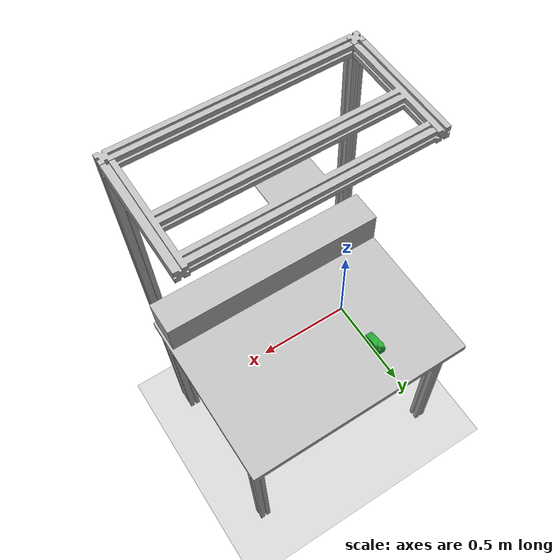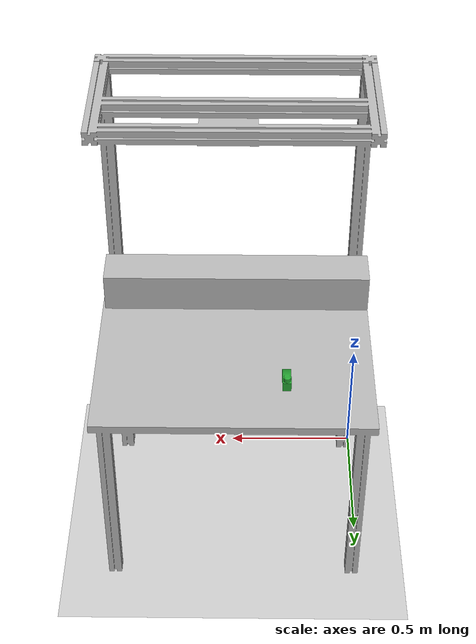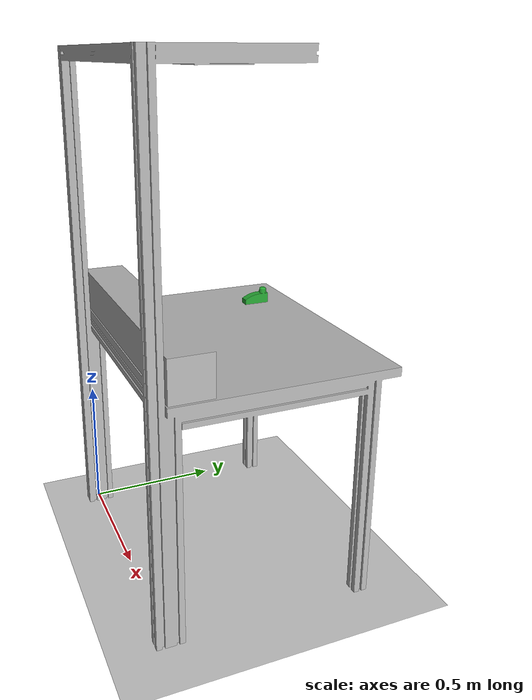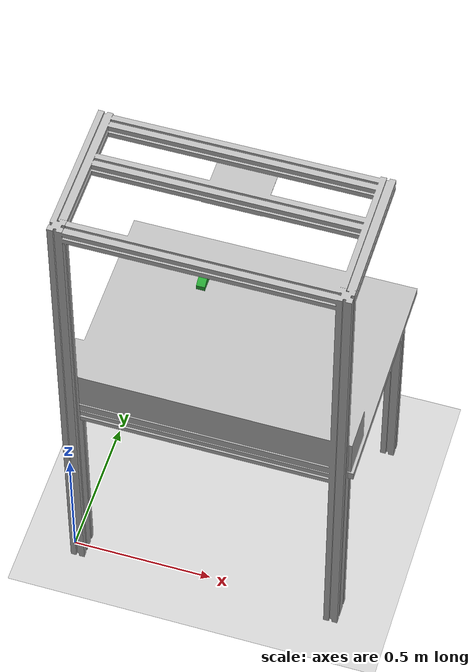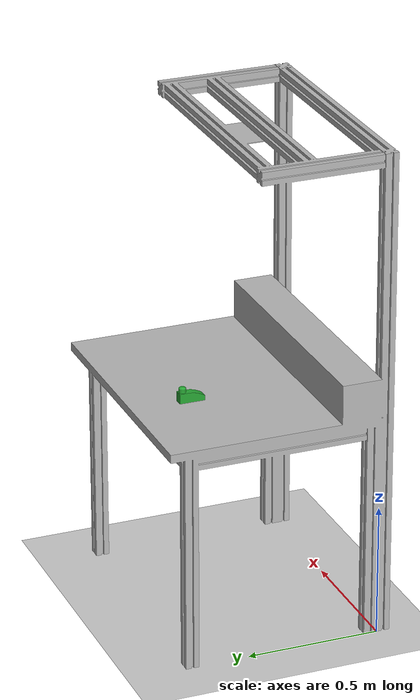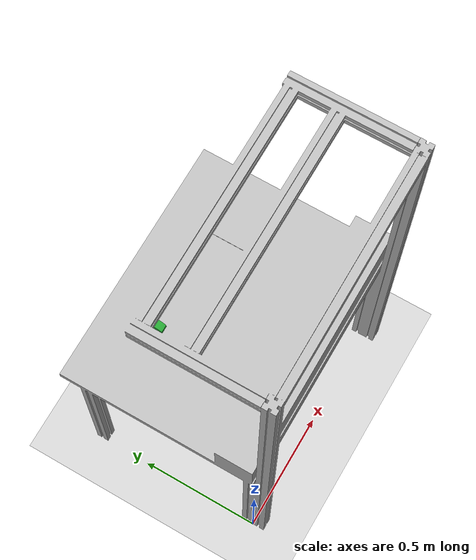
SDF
<?xml version="1.0" ?>
<sdf version="1.4">
  <world name="default">
    <physics type='ode'>
      <gravity>0 0 -9.81</gravity>
      <!-- max step size has to be a multiple of the desired task rate-->
      <max_step_size>0.001</max_step_size>
      <real_time_factor>1</real_time_factor>
    </physics>
    <!-- A global light source -->
    <include>
      <uri>model://sun</uri>
    </include>
    <!-- A ground plane -->
    <include>
      <uri>model://ground_plane</uri>
    </include>
    <include>
      <name>tavolo</name>
      <uri>model://tavolo</uri>
      <pose>0.0 0.0 0.0 0 0 0</pose>
    </include>
    <include>
      <name>X1-Y3-Z2-FILLET</name>
      <uri>model://X1-Y3-Z2-FILLET</uri>
      <pose>0.3 0.6 0.9 0 0 0</pose>
    </include>
     <gui>
    <camera name="gzclient_camera">
      <pose>1. 3.2 2.2 0. 0.4 -1.75</pose>
    </camera>
    </gui>

  </world>
</sdf>

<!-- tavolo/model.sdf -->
<sdf version="1.4">

<physics type="ode">

      <ode>

        <constraints>
          <contact_max_correcting_vel>0.1</contact_max_correcting_vel>
          <contact_surface_layer>0.0001</contact_surface_layer>
        </constraints>
      </ode>
	<max_contacts>10</max_contacts>
	</physics>

	<model name="tavolo">
	    <static>true</static>
		<link name="link">

		     <collision name="base">
			<pose>0.5 0.4 0.85 0 0 0</pose>
			<geometry>
			  <box>
			    <size>1 0.8 0.04</size>
			  </box>
			</geometry>

				<!-- see https://gazebosim.org/tutorials?tut=physics_params&cat=physics-->
				 <surface>
				  <bounce>
				    <restitution_coefficient>0.01</restitution_coefficient>
				    <threshold>5.0</threshold>
				  </bounce>
				  <friction>
				    <ode>
				      <mu>1</mu>
				      <mu2>1</mu2>
				    </ode>
				  </friction>
				  <contact>
				     <ode>
					<max_vel>0.1</max_vel>
					<min_depth>0.001</min_depth>
				        <kp>1000000.0</kp>
					<kd>1000.0</kd>
				      </ode>
			            </contact>
				</surface>

		     	</collision>

	     			<collision name="box">
				<pose>0.5 0.08 0.95 0 0 0</pose>
				<geometry>
				  <box>
				    <size>1 0.15 0.15</size>
				  </box>
				</geometry>

				 <surface>
				  <bounce>
				    <restitution_coefficient>0.01</restitution_coefficient>
				    <threshold>5.0</threshold>
				  </bounce>
				  <friction>
				    <ode>
				      <mu>1</mu>
				      <mu2>1</mu2>
				    </ode>
				  </friction>
				  <contact>
				     <ode>
					<max_vel>0.1</max_vel>
					<min_depth>0.001</min_depth>
				        <kp>1000000.0</kp>
					<kd>1000.0</kd>
				      </ode>
			            </contact>
				</surface>

			      </collision>

			   <collision name="back">
				<pose>0.5 -0.02 1.35 1.57 0 0</pose>
				<geometry>
				  <box>
				    <size>1 1.0 0.04</size>
				  </box>
				</geometry>

				 <surface>
				  <bounce>
				    <restitution_coefficient>0.01</restitution_coefficient>
				    <threshold>5.0</threshold>
				  </bounce>
				  <friction>
				    <ode>
				      <mu>1</mu>
				      <mu2>1</mu2>
				    </ode>
				  </friction>
				  <contact>
				     <ode>
					<max_vel>0.1</max_vel>
					<min_depth>0.001</min_depth>
				        <kp>1000000.0</kp>
					<kd>1000.0</kd>
				      </ode>
			            </contact>
				</surface>

			      </collision>

			<visual name="visual">
				<geometry>
					<mesh>
						<uri>model://tavolo/mesh/tavolo.stl</uri>
                                                <scale>0.001 0.001 0.001</scale>
					</mesh>
				</geometry>
			</visual>
		</link>
	</model>
</sdf>

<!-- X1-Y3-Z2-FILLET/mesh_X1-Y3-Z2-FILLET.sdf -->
<sdf version="1.6">

         <model name="mesh">
             <static>0</static>
             <self_collide>0</self_collide>
             <allow_auto_disable>1</allow_auto_disable>

             <pose>0 0 0 0 -0 0</pose>

             <link name="link">

                 <gravity>1</gravity>
                 <self_collide>0</self_collide>
                 <kinematic>0</kinematic>

               <pose>0 0 0 0 -0 0</pose>

                <inertial>
                    <!-- Volume:  1.6419476000e-05 -->
                    <mass> 1.0 </mass>

                    <!-- Center of mass: -2.3000000000e-07  6.7072100000e-03  2.3563900000e-02 -->
                    <pose> -2.3000000000e-07  6.7072100000e-03  2.3563900000e-02 0 0 0 </pose>

                    <!-- Inertia matrix -->
                    <inertia>
                        <ixx>  1.0341730820e-03 </ixx>
                        <ixy> -1.6151550756e-08 </ixy>
                        <ixz> -3.3374999300e-09 </ixz>
                        <iyy>  3.4911014213e-04 </iyy>
                        <iyz> -1.3833746582e-04 </iyz>
                        <izz>  9.6627051314e-04 </izz>
                    </inertia>
                </inertial>

                 <collision name="collision">
                     <!--
                         Maximum number of contacts allowed between two entities.
                         This value overrides the max_contacts element defined in physics.
                     -->
                     <max_contacts>20</max_contacts>

                    <pose>0 0 0 0 -0 0</pose>

                     <geometry>
                         <mesh>
                             <uri>model://X1-Y3-Z2-FILLET/mesh/X1-Y3-Z2-FILLET.stl</uri>
                             <!-- Scaling factor applied to the mesh -->
                             <scale>1.0 1.0 1.0</scale>
                         </mesh>
                     </geometry>
                     <!-- http://sdformat.org/spec?ver=1.6&elem=collision#surface_soft_contact -->
                     <surface></surface>
                 </collision>

                 <visual name="visual">
                     <cast_shadows>1</cast_shadows>
                     <transparency>0</transparency>

                     <pose>0 0 0 0 -0 0</pose>

                     <material>

                         <script>
                             <uri>file://media/materials/scripts/gazebo.material</uri>
                             <name>Gazebo/Green</name>
                         </script>
                         <shader type="vertex">
                           <normal_map>__default__</normal_map>
                         </shader>

                         <lighting>1</lighting>
 		                <ambient>0.15 0.75 0.35 1</ambient>
 		                <diffuse>0.1 0.95 0.25 1</diffuse>
 		                <specular>0.01 0.01 0.01 1</specular>
 		                <emissive>0 0 0 1</emissive>
                     </material>

                     <geometry>
                         <mesh>
                             <uri>model://X1-Y3-Z2-FILLET/mesh/X1-Y3-Z2-FILLET.stl</uri>
                             <!-- Scaling factor applied to the mesh -->
                             <scale>1.0 1.0 1.0</scale>
                         </mesh>
                     </geometry>
                 </visual>
             </link>
         </model>
     </sdf>
